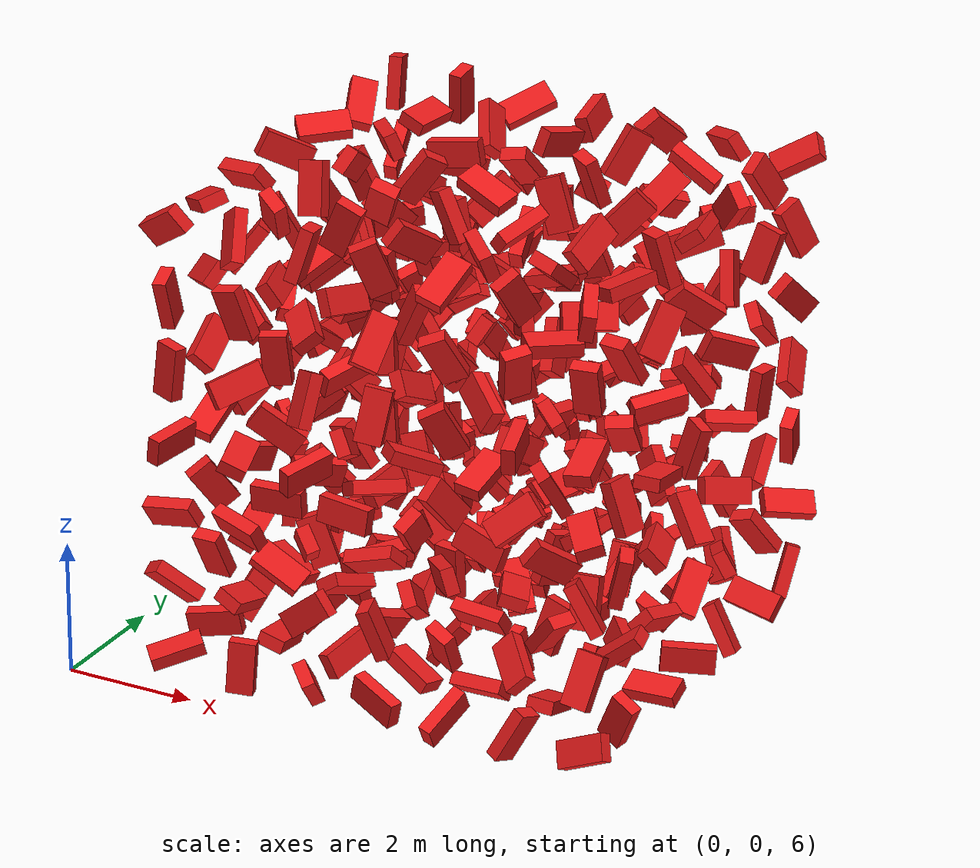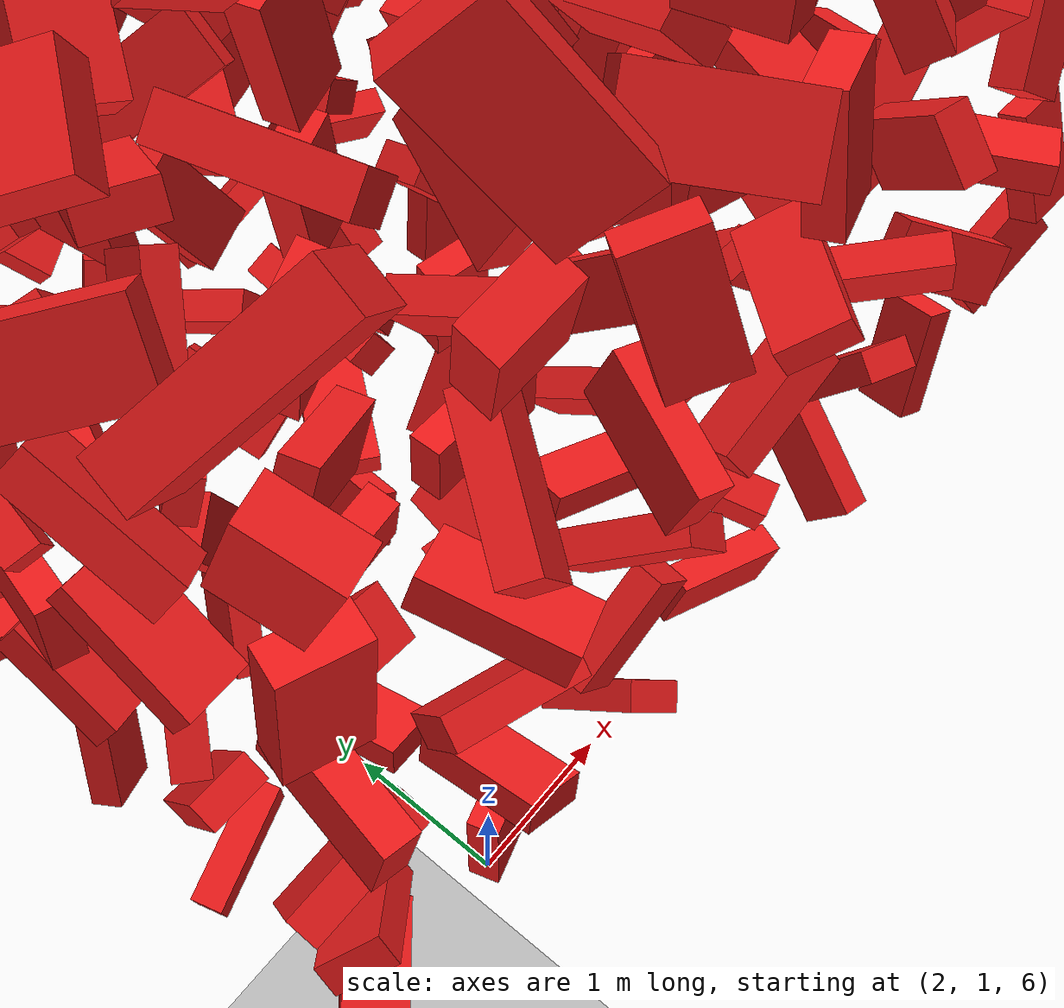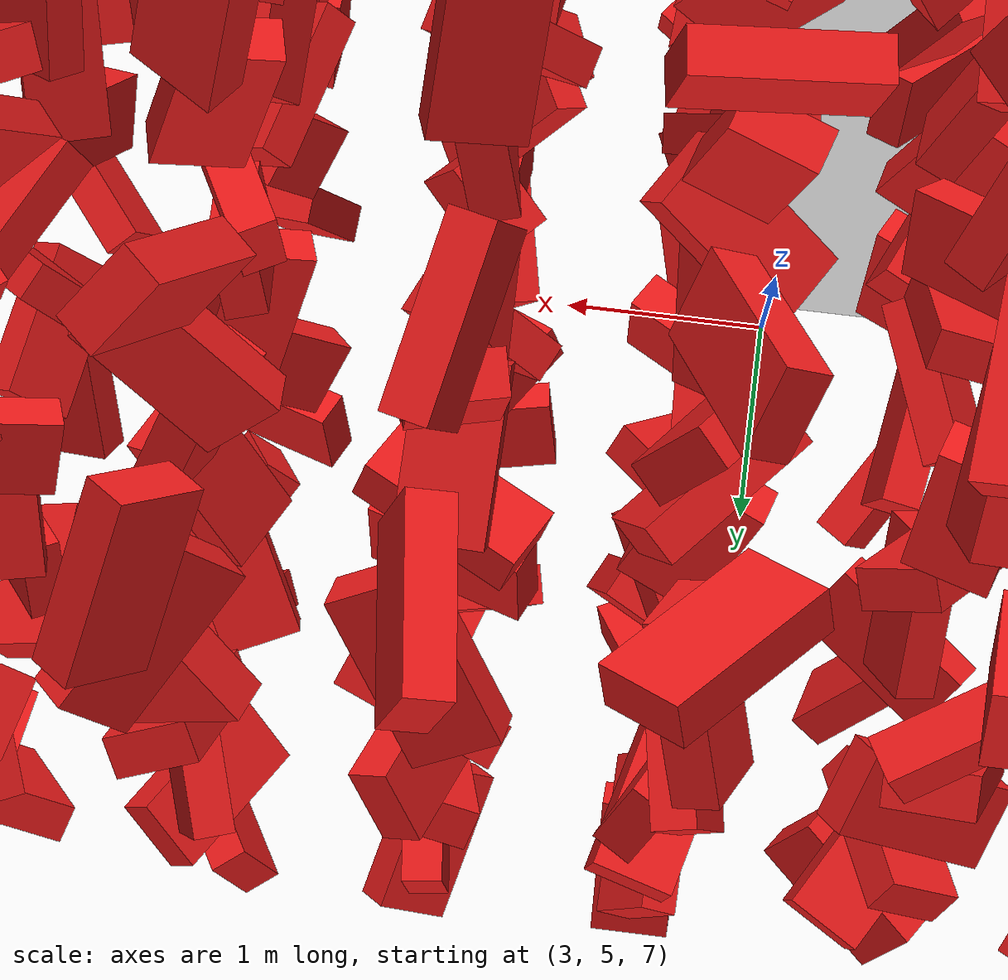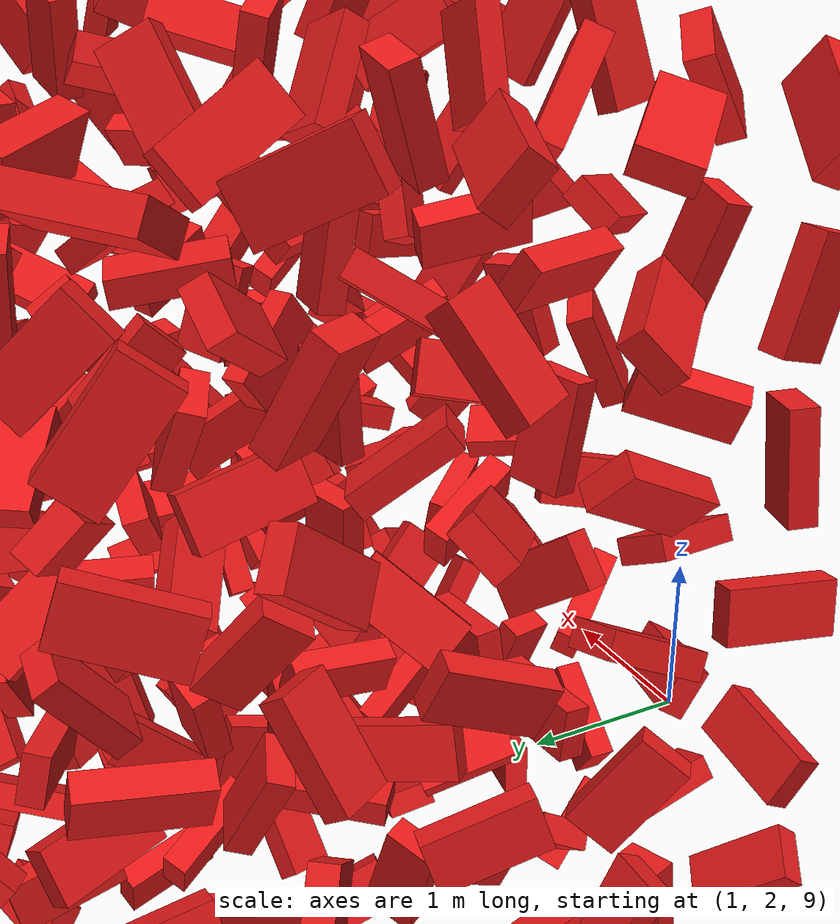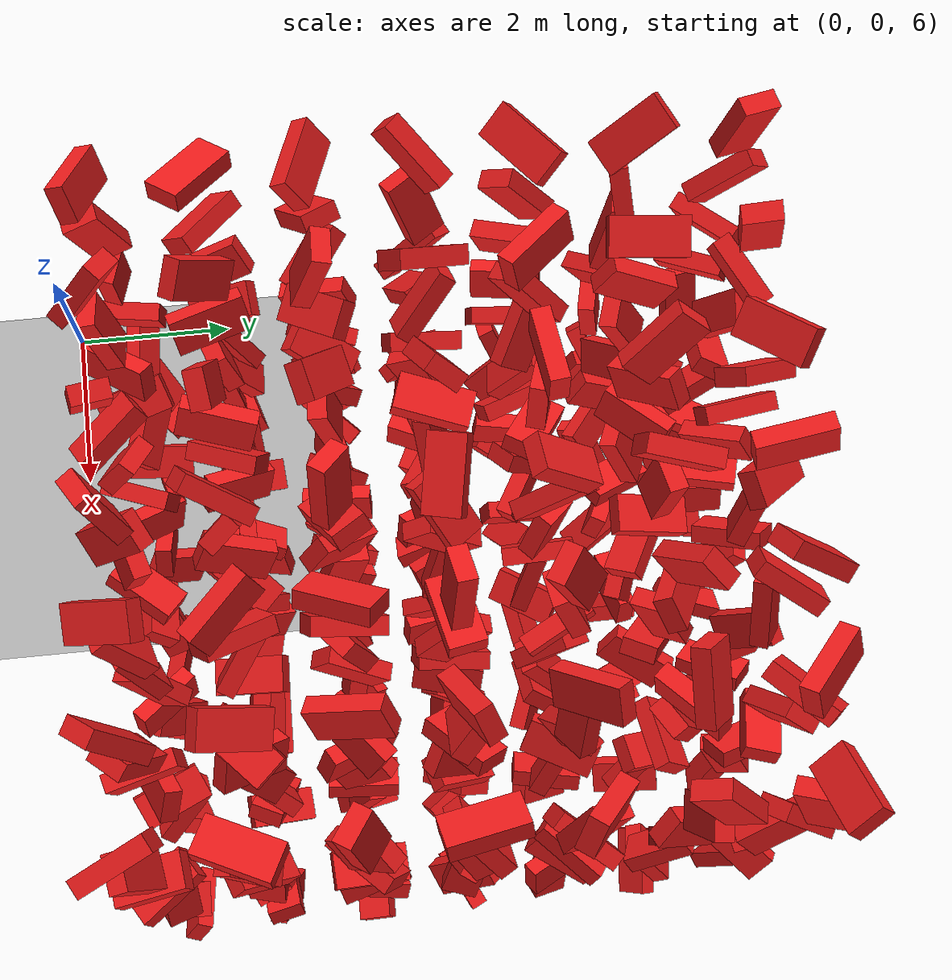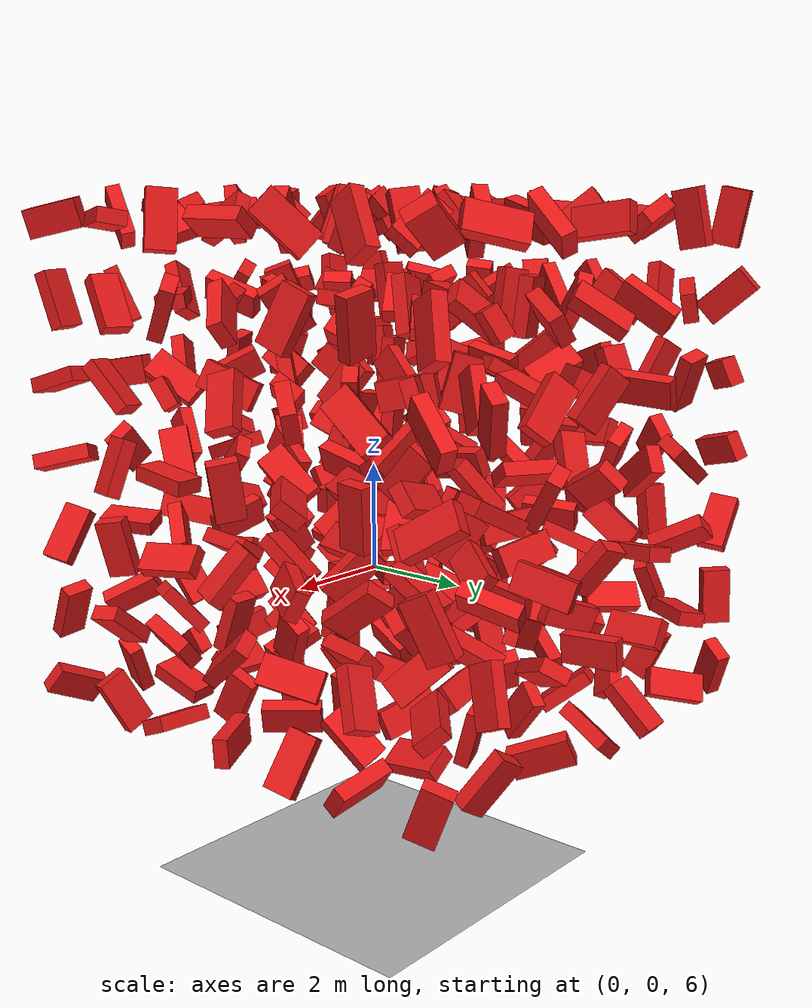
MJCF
<mujoco model="Humanoid and 100 objects">
    <compiler angle="degree"/>

    <option timestep="0.01" iterations="50" solver="PGS" jacobian="sparse" cone="elliptic" tolerance="1e-10"/>

    <size njmax="5000" nconmax="2000" nstack="1000000000"/>

    <default>
        <geom solimp=".9 .9 .01"/>

        <default class="object5">
			<geom type="box" material="geom" rgba=".9 .1 .1 1" size="0.400000 0.200000 0.100000"/>
        </default>
    </default>

    <asset>
        <texture type="skybox" builtin="gradient" width="128" height="128" rgb1=".4 .6 .8" rgb2="0 0 0"/>
        <texture name="texgeom" type="cube" builtin="flat" mark="cross" width="128" height="128"
            rgb1="0.6 0.6 0.6" rgb2="0.6 0.6 0.6" markrgb="1 1 1"/>
        <texture name="texplane" type="2d" builtin="checker" rgb1=".4 .4 .4" rgb2=".6 .6 .6"
            width="512" height="512"/>
        <material name='geom' texture="texgeom" texuniform="true"/>
        <material name='MatPlane' reflectance='0.3' texture="texplane" texrepeat="1 1" texuniform="true"/>
    </asset>

    <visual>
        <quality shadowsize="4096" offsamples="8"/>
        <map znear="0.1" force="0.05"/>
    </visual>

    <statistic extent="4"/>

    <worldbody>
        <light directional="true" diffuse=".8 .8 .8" pos="0 0 10" dir="0 0 -10"/>

        <geom pos="0 0 0" type="plane" size="3 3 .5" rgba=".7 .7 .7 1" material="MatPlane"/>
		<body pos="1.100143 1.100812 6.100941" quat="-0.928534 -0.108128 0.104586 -0.339404"> <freejoint/> <geom class="object5"/> </body>
		<body pos="1.100871 1.100146 7.200944" quat="0.217279 0.378159 -0.820158 0.370305"> <freejoint/> <geom class="object5"/> </body>
		<body pos="1.100969 1.100847 8.300532" quat="0.060974 -0.061366 0.508905 0.856465"> <freejoint/> <geom class="object5"/> </body>
		<body pos="1.100899 1.100351 9.400853" quat="0.431545 -0.476933 0.600580 -0.474982"> <freejoint/> <geom class="object5"/> </body>
		<body pos="1.100754 1.100403 10.500342" quat="-0.609891 -0.427465 0.538547 -0.394049"> <freejoint/> <geom class="object5"/> </body>
		<body pos="1.100168 1.100981 11.600679" quat="-0.701670 -0.039336 -0.687920 -0.181324"> <freejoint/> <geom class="object5"/> </body>
		<body pos="1.100625 1.100899 12.700781" quat="0.126007 0.292692 0.773537 -0.547809"> <freejoint/> <geom class="object5"/> </body>
		<body pos="1.100324 2.200118 6.100094" quat="0.148892 -0.054048 0.743789 -0.649375"> <freejoint/> <geom class="object5"/> </body>
		<body pos="1.100077 2.200330 7.200208" quat="-0.369398 -0.589394 0.618749 -0.365117"> <freejoint/> <geom class="object5"/> </body>
		<body pos="1.100399 2.200062 8.300447" quat="0.453628 -0.670894 0.022151 0.586202"> <freejoint/> <geom class="object5"/> </body>
		<body pos="1.100260 2.200176 9.400301" quat="-0.671848 -0.256605 0.069954 -0.691289"> <freejoint/> <geom class="object5"/> </body>
		<body pos="1.100639 2.200514 10.500010" quat="0.505306 0.449603 0.177341 0.714894"> <freejoint/> <geom class="object5"/> </body>
		<body pos="1.100038 2.200320 11.600415" quat="0.859487 0.341247 -0.250368 -0.286616"> <freejoint/> <geom class="object5"/> </body>
		<body pos="1.100673 2.200075 12.700620" quat="0.195610 0.347828 0.912933 0.085474"> <freejoint/> <geom class="object5"/> </body>
		<body pos="1.100326 3.300643 6.100701" quat="-0.155397 0.535804 -0.553213 -0.618645"> <freejoint/> <geom class="object5"/> </body>
		<body pos="1.100260 3.300324 7.200736" quat="0.604783 0.370000 0.039091 0.704138"> <freejoint/> <geom class="object5"/> </body>
		<body pos="1.100248 3.300565 8.300598" quat="0.540276 0.301260 -0.585066 -0.524444"> <freejoint/> <geom class="object5"/> </body>
		<body pos="1.100158 3.300597 9.400577" quat="0.564793 -0.504649 -0.584117 0.291797"> <freejoint/> <geom class="object5"/> </body>
		<body pos="1.100312 3.300719 10.500138" quat="-0.003530 -0.348487 -0.852557 -0.389476"> <freejoint/> <geom class="object5"/> </body>
		<body pos="1.100046 3.300318 11.600235" quat="-0.227389 -0.436059 -0.045762 0.869513"> <freejoint/> <geom class="object5"/> </body>
		<body pos="1.100337 3.300404 12.700383" quat="-0.873898 0.448515 -0.009525 0.187205"> <freejoint/> <geom class="object5"/> </body>
		<body pos="1.100188 4.400924 6.100762" quat="0.969688 -0.090352 0.213673 -0.076719"> <freejoint/> <geom class="object5"/> </body>
		<body pos="1.100739 4.400282 7.200134" quat="0.666790 -0.460705 0.573368 -0.119968"> <freejoint/> <geom class="object5"/> </body>
		<body pos="1.100412 4.400888 8.300310" quat="0.561245 0.722905 0.022077 -0.402399"> <freejoint/> <geom class="object5"/> </body>
		<body pos="1.100812 4.400869 9.400286" quat="-0.845993 -0.115975 0.465023 -0.233663"> <freejoint/> <geom class="object5"/> </body>
		<body pos="1.100791 4.400641 10.500027" quat="-0.596489 0.099686 0.611871 -0.509782"> <freejoint/> <geom class="object5"/> </body>
		<body pos="1.100618 4.400365 11.600817" quat="0.114862 0.816112 0.256895 -0.504750"> <freejoint/> <geom class="object5"/> </body>
		<body pos="1.100085 4.400126 12.700987" quat="0.705635 0.569384 0.408394 0.105336"> <freejoint/> <geom class="object5"/> </body>
		<body pos="1.100055 5.500801 6.100475" quat="-0.098412 0.704807 -0.402731 -0.575648"> <freejoint/> <geom class="object5"/> </body>
		<body pos="1.100027 5.500235 7.200805" quat="-0.660256 0.573012 -0.188446 -0.447446"> <freejoint/> <geom class="object5"/> </body>
		<body pos="1.100306 5.500102 8.300215" quat="-0.550597 0.455581 0.357169 -0.601431"> <freejoint/> <geom class="object5"/> </body>
		<body pos="1.100078 5.500506 9.400549" quat="0.308031 0.559875 -0.634455 -0.434884"> <freejoint/> <geom class="object5"/> </body>
		<body pos="1.100917 5.500084 10.500354" quat="-0.490262 -0.666291 -0.310970 -0.467972"> <freejoint/> <geom class="object5"/> </body>
		<body pos="1.100090 5.500124 11.600470" quat="0.096959 -0.655873 0.347052 -0.663314"> <freejoint/> <geom class="object5"/> </body>
		<body pos="1.100832 5.500861 12.700261" quat="-0.906843 -0.257738 -0.056551 -0.328647"> <freejoint/> <geom class="object5"/> </body>
		<body pos="1.100699 6.600300 6.100250" quat="0.712753 -0.210525 0.661735 -0.098840"> <freejoint/> <geom class="object5"/> </body>
		<body pos="1.100101 6.600577 7.200451" quat="0.335050 -0.410730 0.437293 0.726510"> <freejoint/> <geom class="object5"/> </body>
		<body pos="1.100034 6.600745 8.300692" quat="0.590447 -0.407255 0.513398 0.471104"> <freejoint/> <geom class="object5"/> </body>
		<body pos="1.100802 6.600095 9.400633" quat="0.766174 -0.409762 -0.480996 0.117110"> <freejoint/> <geom class="object5"/> </body>
		<body pos="1.100830 6.600740 10.500184" quat="0.479297 0.263987 -0.587495 0.596184"> <freejoint/> <geom class="object5"/> </body>
		<body pos="1.100553 6.600532 11.600325" quat="0.425514 -0.362186 -0.528831 -0.638825"> <freejoint/> <geom class="object5"/> </body>
		<body pos="1.100099 6.600181 12.700839" quat="-0.322323 0.500423 0.802931 0.031418"> <freejoint/> <geom class="object5"/> </body>
		<body pos="1.100429 7.700229 6.100377" quat="0.758674 -0.325155 -0.564242 0.017848"> <freejoint/> <geom class="object5"/> </body>
		<body pos="1.100734 7.700316 7.200063" quat="0.661231 0.286173 -0.638877 0.269655"> <freejoint/> <geom class="object5"/> </body>
		<body pos="1.100194 7.700900 8.300980" quat="0.071529 -0.429961 -0.090485 -0.895450"> <freejoint/> <geom class="object5"/> </body>
		<body pos="1.100386 7.700552 9.400892" quat="-0.386885 0.355464 -0.725369 0.444753"> <freejoint/> <geom class="object5"/> </body>
		<body pos="1.100727 7.700392 10.500573" quat="-0.263031 -0.287611 0.495639 0.776168"> <freejoint/> <geom class="object5"/> </body>
		<body pos="1.100664 7.700645 11.600586" quat="-0.407136 -0.627850 0.189419 0.635740"> <freejoint/> <geom class="object5"/> </body>
		<body pos="1.100208 7.700744 12.700470" quat="0.697328 -0.166261 0.696678 0.027029"> <freejoint/> <geom class="object5"/> </body>
		<body pos="2.200721 1.100259 6.100964" quat="0.567728 -0.450504 -0.565875 -0.393086"> <freejoint/> <geom class="object5"/> </body>
		<body pos="2.200543 1.100469 7.200284" quat="0.667090 -0.253237 0.066368 -0.697464"> <freejoint/> <geom class="object5"/> </body>
		<body pos="2.200444 1.100691 8.300066" quat="0.124474 -0.089388 -0.864470 0.478756"> <freejoint/> <geom class="object5"/> </body>
		<body pos="2.200555 1.100019 9.400341" quat="0.189955 -0.575303 -0.784808 0.130457"> <freejoint/> <geom class="object5"/> </body>
		<body pos="2.200621 1.100600 10.500335" quat="0.445081 -0.153718 0.537845 -0.699283"> <freejoint/> <geom class="object5"/> </body>
		<body pos="2.200818 1.100346 11.600307" quat="-0.393188 -0.482362 0.620005 -0.477834"> <freejoint/> <geom class="object5"/> </body>
		<body pos="2.200405 1.100653 12.700901" quat="0.607771 0.050908 -0.582202 0.537646"> <freejoint/> <geom class="object5"/> </body>
		<body pos="2.200322 2.200050 6.100240" quat="-0.731359 0.176067 -0.019071 0.658597"> <freejoint/> <geom class="object5"/> </body>
		<body pos="2.200209 2.200674 7.200961" quat="0.928321 0.252167 0.272392 -0.020859"> <freejoint/> <geom class="object5"/> </body>
		<body pos="2.200667 2.200385 8.300257" quat="0.026884 -0.032400 0.746204 -0.664385"> <freejoint/> <geom class="object5"/> </body>
		<body pos="2.200205 2.200186 9.400826" quat="-0.336972 0.098055 0.673795 0.650259"> <freejoint/> <geom class="object5"/> </body>
		<body pos="2.200411 2.200066 10.500847" quat="-0.357423 -0.600483 0.461773 -0.546291"> <freejoint/> <geom class="object5"/> </body>
		<body pos="2.200183 2.200064 11.600563" quat="0.713057 -0.368180 0.287857 -0.522620"> <freejoint/> <geom class="object5"/> </body>
		<body pos="2.200035 2.200644 12.700539" quat="0.593466 -0.096620 0.539525 0.589386"> <freejoint/> <geom class="object5"/> </body>
		<body pos="2.200199 3.300870 6.100698" quat="-0.456195 0.166358 -0.799111 0.354448"> <freejoint/> <geom class="object5"/> </body>
		<body pos="2.200523 3.300731 7.200531" quat="0.511405 -0.270024 -0.690372 -0.434671"> <freejoint/> <geom class="object5"/> </body>
		<body pos="2.200911 3.300895 8.300840" quat="-0.585184 -0.703909 -0.366865 -0.165775"> <freejoint/> <geom class="object5"/> </body>
		<body pos="2.200597 3.300377 9.400965" quat="-0.414880 0.184509 -0.828362 0.328097"> <freejoint/> <geom class="object5"/> </body>
		<body pos="2.200611 3.300340 10.500026" quat="0.495186 -0.287132 -0.143776 -0.807264"> <freejoint/> <geom class="object5"/> </body>
		<body pos="2.200915 3.300322 11.600018" quat="0.820148 0.290193 -0.128217 0.476136"> <freejoint/> <geom class="object5"/> </body>
		<body pos="2.200062 3.300217 12.700755" quat="-0.465614 0.595735 -0.548083 -0.357644"> <freejoint/> <geom class="object5"/> </body>
		<body pos="2.200992 4.400400 6.100939" quat="0.656090 -0.282032 0.538160 0.447647"> <freejoint/> <geom class="object5"/> </body>
		<body pos="2.200666 4.400655 7.200246" quat="-0.547265 0.638625 0.421258 -0.339414"> <freejoint/> <geom class="object5"/> </body>
		<body pos="2.200501 4.400052 8.300414" quat="-0.382209 -0.389738 0.729829 -0.411546"> <freejoint/> <geom class="object5"/> </body>
		<body pos="2.200750 4.400630 9.400336" quat="-0.528731 -0.116906 0.789523 0.288843"> <freejoint/> <geom class="object5"/> </body>
		<body pos="2.200743 4.400146 10.500366" quat="-0.633765 -0.335310 0.454358 0.528647"> <freejoint/> <geom class="object5"/> </body>
		<body pos="2.200329 4.400089 11.600611" quat="-0.450680 -0.057891 0.487087 -0.745843"> <freejoint/> <geom class="object5"/> </body>
		<body pos="2.200990 4.400429 12.700461" quat="0.417545 -0.472496 -0.258046 0.731994"> <freejoint/> <geom class="object5"/> </body>
		<body pos="2.200703 5.500746 6.100574" quat="0.185044 -0.459959 0.612727 -0.615437"> <freejoint/> <geom class="object5"/> </body>
		<body pos="2.200295 5.500898 7.200777" quat="-0.460393 0.602643 0.484843 -0.435646"> <freejoint/> <geom class="object5"/> </body>
		<body pos="2.200465 5.500293 8.300681" quat="-0.469907 0.320957 0.400783 -0.718017"> <freejoint/> <geom class="object5"/> </body>
		<body pos="2.200575 5.500222 9.400089" quat="-0.391810 0.628523 -0.630339 -0.232629"> <freejoint/> <geom class="object5"/> </body>
		<body pos="2.200700 5.500255 10.500313" quat="-0.880472 0.331686 -0.315726 0.122763"> <freejoint/> <geom class="object5"/> </body>
		<body pos="2.200919 5.500038 11.600429" quat="-0.667541 -0.468771 -0.574943 -0.063899"> <freejoint/> <geom class="object5"/> </body>
		<body pos="2.200346 5.500765 12.700799" quat="0.203435 -0.364813 -0.743935 0.521619"> <freejoint/> <geom class="object5"/> </body>
		<body pos="2.200675 6.600021 6.100335" quat="0.459905 0.027647 -0.831129 -0.311363"> <freejoint/> <geom class="object5"/> </body>
		<body pos="2.200459 6.600555 7.200508" quat="0.306001 0.112758 0.389518 0.861350"> <freejoint/> <geom class="object5"/> </body>
		<body pos="2.200916 6.600383 8.300290" quat="-0.436624 0.541732 -0.218059 0.684351"> <freejoint/> <geom class="object5"/> </body>
		<body pos="2.200852 6.600233 9.400290" quat="-0.502002 0.702853 0.482509 0.145523"> <freejoint/> <geom class="object5"/> </body>
		<body pos="2.200411 6.600174 10.500073" quat="0.662374 -0.303109 0.458237 0.509318"> <freejoint/> <geom class="object5"/> </body>
		<body pos="2.200533 6.600653 11.600962" quat="-0.303302 0.675241 0.382363 -0.553043"> <freejoint/> <geom class="object5"/> </body>
		<body pos="2.200010 6.600117 12.700529" quat="-0.136032 -0.662836 0.722880 0.139959"> <freejoint/> <geom class="object5"/> </body>
		<body pos="2.200991 7.700488 6.100393" quat="0.486407 0.793979 -0.354364 -0.086204"> <freejoint/> <geom class="object5"/> </body>
		<body pos="2.200881 7.700796 7.200008" quat="-0.862377 0.083253 0.048851 -0.496979"> <freejoint/> <geom class="object5"/> </body>
		<body pos="2.200375 7.700661 8.300124" quat="-0.013294 -0.585729 -0.706199 -0.397528"> <freejoint/> <geom class="object5"/> </body>
		<body pos="2.200642 7.700569 9.400561" quat="-0.921864 0.248157 0.283821 0.089616"> <freejoint/> <geom class="object5"/> </body>
		<body pos="2.200846 7.700799 10.500877" quat="0.334556 -0.526790 0.653985 0.427630"> <freejoint/> <geom class="object5"/> </body>
		<body pos="2.200335 7.700891 11.600842" quat="-0.716104 0.638936 0.088789 -0.266595"> <freejoint/> <geom class="object5"/> </body>
		<body pos="2.200108 7.700185 12.700047" quat="-0.067974 0.674116 0.049598 -0.733817"> <freejoint/> <geom class="object5"/> </body>
		<body pos="3.300626 1.100652 6.100596" quat="0.009944 -0.639653 -0.526507 0.559943"> <freejoint/> <geom class="object5"/> </body>
		<body pos="3.300495 1.100603 7.200505" quat="-0.258766 0.207075 -0.686382 -0.647333"> <freejoint/> <geom class="object5"/> </body>
		<body pos="3.300894 1.100387 8.300132" quat="0.586138 0.618286 -0.521079 -0.051392"> <freejoint/> <geom class="object5"/> </body>
		<body pos="3.300127 1.100012 9.400409" quat="-0.395739 0.395923 -0.677788 0.476696"> <freejoint/> <geom class="object5"/> </body>
		<body pos="3.300821 1.100704 10.500765" quat="0.445839 0.535594 0.173717 -0.695837"> <freejoint/> <geom class="object5"/> </body>
		<body pos="3.300513 1.100531 11.600541" quat="-0.351686 0.829465 -0.431326 0.047565"> <freejoint/> <geom class="object5"/> </body>
		<body pos="3.300308 1.100999 12.700545" quat="0.006040 -0.792283 -0.115426 -0.599106"> <freejoint/> <geom class="object5"/> </body>
		<body pos="3.300045 2.200186 6.100396" quat="-0.553114 0.276907 -0.512609 0.595499"> <freejoint/> <geom class="object5"/> </body>
		<body pos="3.300768 2.200468 7.200420" quat="0.720969 -0.342228 -0.052637 0.600260"> <freejoint/> <geom class="object5"/> </body>
		<body pos="3.300182 2.200379 8.300069" quat="0.676225 -0.734632 0.038101 0.039801"> <freejoint/> <geom class="object5"/> </body>
		<body pos="3.300537 2.200499 9.400552" quat="-0.569686 -0.162767 -0.543865 -0.594285"> <freejoint/> <geom class="object5"/> </body>
		<body pos="3.300665 2.200604 10.500034" quat="0.730233 -0.388434 -0.355336 0.435449"> <freejoint/> <geom class="object5"/> </body>
		<body pos="3.300036 2.200088 11.600789" quat="-0.702299 -0.372833 -0.378859 -0.473538"> <freejoint/> <geom class="object5"/> </body>
		<body pos="3.300324 2.200024 12.700213" quat="0.651461 -0.540243 -0.364924 -0.388030"> <freejoint/> <geom class="object5"/> </body>
		<body pos="3.300652 3.300943 6.100878" quat="-0.500399 -0.575770 -0.615217 -0.198995"> <freejoint/> <geom class="object5"/> </body>
		<body pos="3.300749 3.300955 7.200402" quat="0.441378 0.031692 0.022526 -0.896478"> <freejoint/> <geom class="object5"/> </body>
		<body pos="3.300602 3.300011 8.300894" quat="-0.596163 -0.419253 -0.355652 -0.585088"> <freejoint/> <geom class="object5"/> </body>
		<body pos="3.300153 3.300384 9.400180" quat="-0.595746 -0.430223 -0.541093 0.408917"> <freejoint/> <geom class="object5"/> </body>
		<body pos="3.300182 3.300848 10.500235" quat="-0.430979 0.596561 -0.445599 -0.509719"> <freejoint/> <geom class="object5"/> </body>
		<body pos="3.300774 3.300301 11.600781" quat="0.557173 -0.441370 0.474039 0.519651"> <freejoint/> <geom class="object5"/> </body>
		<body pos="3.300734 3.300415 12.700471" quat="0.256523 0.465120 0.741629 -0.409689"> <freejoint/> <geom class="object5"/> </body>
		<body pos="3.300365 4.400774 6.100637" quat="-0.703478 -0.323377 0.076338 0.628266"> <freejoint/> <geom class="object5"/> </body>
		<body pos="3.300706 4.400986 7.200393" quat="0.155435 -0.522051 -0.645718 0.535118"> <freejoint/> <geom class="object5"/> </body>
		<body pos="3.300517 4.400026 8.300906" quat="-0.434278 -0.359544 0.473710 -0.676557"> <freejoint/> <geom class="object5"/> </body>
		<body pos="3.300195 4.400430 9.400026" quat="0.266735 -0.897052 0.132444 -0.326509"> <freejoint/> <geom class="object5"/> </body>
		<body pos="3.300983 4.400689 10.500226" quat="-0.399066 -0.315587 0.736304 -0.446104"> <freejoint/> <geom class="object5"/> </body>
		<body pos="3.300596 4.400517 11.600538" quat="-0.581638 0.036160 0.069070 0.809703"> <freejoint/> <geom class="object5"/> </body>
		<body pos="3.300988 4.400735 12.700708" quat="0.808406 -0.354578 -0.463478 -0.077091"> <freejoint/> <geom class="object5"/> </body>
		<body pos="3.300447 5.500619 6.100864" quat="0.331869 0.333668 0.261961 -0.842559"> <freejoint/> <geom class="object5"/> </body>
		<body pos="3.300495 5.500400 7.200265" quat="0.576916 0.428932 -0.524649 -0.455992"> <freejoint/> <geom class="object5"/> </body>
		<body pos="3.300003 5.500947 8.300133" quat="0.161785 0.217493 0.596540 0.755422"> <freejoint/> <geom class="object5"/> </body>
		<body pos="3.300537 5.500600 9.400134" quat="-0.728659 -0.061124 0.463859 0.500155"> <freejoint/> <geom class="object5"/> </body>
		<body pos="3.300347 5.500058 10.500417" quat="-0.054765 -0.927589 0.267921 -0.254553"> <freejoint/> <geom class="object5"/> </body>
		<body pos="3.300331 5.500625 11.600332" quat="0.520473 0.376828 -0.618585 0.452173"> <freejoint/> <geom class="object5"/> </body>
		<body pos="3.300578 5.500093 12.700725" quat="-0.095613 -0.010502 -0.706716 0.700929"> <freejoint/> <geom class="object5"/> </body>
		<body pos="3.300796 6.600324 6.100297" quat="0.488762 0.261746 -0.194139 0.809266"> <freejoint/> <geom class="object5"/> </body>
		<body pos="3.300983 6.600676 7.200474" quat="-0.613134 0.742538 -0.055514 0.263861"> <freejoint/> <geom class="object5"/> </body>
		<body pos="3.300040 6.600634 8.300710" quat="-0.016690 0.844887 -0.485014 0.225054"> <freejoint/> <geom class="object5"/> </body>
		<body pos="3.300501 6.600776 9.400656" quat="0.390508 0.441221 -0.731092 0.343993"> <freejoint/> <geom class="object5"/> </body>
		<body pos="3.300628 6.600832 10.500164" quat="0.768032 0.490457 0.207295 0.355821"> <freejoint/> <geom class="object5"/> </body>
		<body pos="3.300243 6.600695 11.600607" quat="-0.611127 0.597665 0.518351 -0.025134"> <freejoint/> <geom class="object5"/> </body>
		<body pos="3.300610 6.600302 12.700763" quat="-0.305063 -0.466925 -0.213498 -0.802082"> <freejoint/> <geom class="object5"/> </body>
		<body pos="3.300592 7.700271 6.100143" quat="0.234848 0.656079 0.663613 -0.272075"> <freejoint/> <geom class="object5"/> </body>
		<body pos="3.300931 7.700420 7.200589" quat="-0.359959 0.618332 0.615758 -0.330057"> <freejoint/> <geom class="object5"/> </body>
		<body pos="3.300762 7.700040 8.300577" quat="0.607633 0.091313 -0.030991 -0.788342"> <freejoint/> <geom class="object5"/> </body>
		<body pos="3.300380 7.700215 9.400573" quat="0.660397 -0.501320 -0.541824 0.137769"> <freejoint/> <geom class="object5"/> </body>
		<body pos="3.300466 7.700907 10.500688" quat="-0.637825 -0.416381 0.392871 0.515227"> <freejoint/> <geom class="object5"/> </body>
		<body pos="3.300286 7.700799 11.600876" quat="-0.756414 -0.242481 0.484052 0.367061"> <freejoint/> <geom class="object5"/> </body>
		<body pos="3.300134 7.700715 12.700901" quat="0.347459 -0.835061 -0.424693 -0.039760"> <freejoint/> <geom class="object5"/> </body>
		<body pos="4.400789 1.100959 6.100477" quat="0.016552 0.207844 0.658002 0.723575"> <freejoint/> <geom class="object5"/> </body>
		<body pos="4.400224 1.100158 7.200586" quat="0.044404 0.810758 0.135143 -0.567834"> <freejoint/> <geom class="object5"/> </body>
		<body pos="4.400524 1.100255 8.300141" quat="-0.915347 0.372651 0.141252 0.057606"> <freejoint/> <geom class="object5"/> </body>
		<body pos="4.400194 1.100453 9.400209" quat="-0.042886 0.424278 -0.871352 0.242684"> <freejoint/> <geom class="object5"/> </body>
		<body pos="4.400789 1.100968 10.500013" quat="0.513413 0.536623 -0.317090 0.589828"> <freejoint/> <geom class="object5"/> </body>
		<body pos="4.400519 1.100241 11.600223" quat="-0.067939 0.682088 -0.537248 -0.491432"> <freejoint/> <geom class="object5"/> </body>
		<body pos="4.400009 1.100663 12.700147" quat="-0.625557 -0.473901 -0.591679 0.184425"> <freejoint/> <geom class="object5"/> </body>
		<body pos="4.400142 2.200308 6.100496" quat="-0.967783 0.084864 -0.214202 0.101548"> <freejoint/> <geom class="object5"/> </body>
		<body pos="4.400651 2.200071 7.200811" quat="-0.562789 -0.518343 0.633428 0.115576"> <freejoint/> <geom class="object5"/> </body>
		<body pos="4.400326 2.200994 8.300421" quat="-0.357233 0.538140 0.147348 -0.749052"> <freejoint/> <geom class="object5"/> </body>
		<body pos="4.400856 2.200009 9.400806" quat="-0.897237 0.086182 -0.189434 -0.389426"> <freejoint/> <geom class="object5"/> </body>
		<body pos="4.400520 2.200451 10.500908" quat="-0.708820 -0.226523 -0.455674 -0.488490"> <freejoint/> <geom class="object5"/> </body>
		<body pos="4.400206 2.200115 11.600348" quat="0.329396 -0.780572 -0.158915 -0.506904"> <freejoint/> <geom class="object5"/> </body>
		<body pos="4.400899 2.200866 12.700076" quat="-0.120883 0.563065 -0.564474 0.591367"> <freejoint/> <geom class="object5"/> </body>
		<body pos="4.400879 3.300300 6.100006" quat="0.893780 0.148040 -0.404566 0.124770"> <freejoint/> <geom class="object5"/> </body>
		<body pos="4.400535 3.300265 7.200518" quat="0.440006 0.566729 0.442861 -0.537668"> <freejoint/> <geom class="object5"/> </body>
		<body pos="4.400233 3.300983 8.300444" quat="-0.453158 0.163110 0.852310 -0.203987"> <freejoint/> <geom class="object5"/> </body>
		<body pos="4.400456 3.300009 9.400982" quat="0.618763 -0.073101 -0.771907 0.126286"> <freejoint/> <geom class="object5"/> </body>
		<body pos="4.400435 3.300705 10.500651" quat="-0.537471 -0.134602 -0.699952 -0.450638"> <freejoint/> <geom class="object5"/> </body>
		<body pos="4.400766 3.300140 11.600447" quat="-0.262428 -0.343624 -0.097142 0.896447"> <freejoint/> <geom class="object5"/> </body>
		<body pos="4.400709 3.300995 12.700134" quat="-0.755881 0.376929 -0.485050 -0.226485"> <freejoint/> <geom class="object5"/> </body>
		<body pos="4.400282 4.400410 6.100817" quat="-0.481927 -0.606604 0.557019 0.299178"> <freejoint/> <geom class="object5"/> </body>
		<body pos="4.400244 4.400642 7.200062" quat="0.288064 0.670895 0.286501 0.620351"> <freejoint/> <geom class="object5"/> </body>
		<body pos="4.400785 4.400249 8.300007" quat="0.076785 0.880487 0.215114 -0.415419"> <freejoint/> <geom class="object5"/> </body>
		<body pos="4.400607 4.400934 9.400558" quat="-0.395294 -0.161525 0.604277 -0.672682"> <freejoint/> <geom class="object5"/> </body>
		<body pos="4.400177 4.400157 10.500728" quat="0.247549 -0.635630 0.277735 -0.676430"> <freejoint/> <geom class="object5"/> </body>
		<body pos="4.400811 4.400578 11.600883" quat="-0.902700 0.116271 -0.295753 -0.290075"> <freejoint/> <geom class="object5"/> </body>
		<body pos="4.400216 4.400494 12.700716" quat="-0.150339 0.967837 -0.110891 -0.168503"> <freejoint/> <geom class="object5"/> </body>
		<body pos="4.400497 5.500473 6.100649" quat="-0.099583 0.000777 0.444263 0.890344"> <freejoint/> <geom class="object5"/> </body>
		<body pos="4.400475 5.500791 7.200522" quat="0.840857 0.262075 0.060586 0.469687"> <freejoint/> <geom class="object5"/> </body>
		<body pos="4.400403 5.500028 8.300859" quat="0.571717 0.661308 0.157514 -0.459348"> <freejoint/> <geom class="object5"/> </body>
		<body pos="4.400262 5.500105 9.400093" quat="0.441643 -0.556699 0.595247 -0.375125"> <freejoint/> <geom class="object5"/> </body>
		<body pos="4.400828 5.500871 10.500649" quat="0.613866 0.173952 -0.683925 0.353774"> <freejoint/> <geom class="object5"/> </body>
		<body pos="4.400795 5.500260 11.600413" quat="0.635965 -0.205435 -0.630770 0.394302"> <freejoint/> <geom class="object5"/> </body>
		<body pos="4.400186 5.500912 12.700521" quat="0.342182 0.639689 0.660625 -0.193094"> <freejoint/> <geom class="object5"/> </body>
		<body pos="4.400604 6.600602 6.100299" quat="-0.366327 -0.664531 -0.106289 -0.642578"> <freejoint/> <geom class="object5"/> </body>
		<body pos="4.400829 6.600070 7.200382" quat="-0.214623 -0.050522 -0.649250 0.727914"> <freejoint/> <geom class="object5"/> </body>
		<body pos="4.400935 6.600871 8.300478" quat="0.817333 -0.541332 0.183279 -0.073052"> <freejoint/> <geom class="object5"/> </body>
		<body pos="4.400196 6.600305 9.400318" quat="0.223663 -0.073647 -0.274290 0.932371"> <freejoint/> <geom class="object5"/> </body>
		<body pos="4.400912 6.600967 10.500575" quat="-0.102607 -0.710517 -0.682141 0.139001"> <freejoint/> <geom class="object5"/> </body>
		<body pos="4.400132 6.600937 11.600310" quat="0.420352 -0.592130 0.456524 0.514074"> <freejoint/> <geom class="object5"/> </body>
		<body pos="4.400189 6.600515 12.700270" quat="-0.546307 -0.309447 0.550413 0.550307"> <freejoint/> <geom class="object5"/> </body>
		<body pos="4.400139 7.700294 6.100870" quat="0.076335 -0.615120 0.696498 -0.361512"> <freejoint/> <geom class="object5"/> </body>
		<body pos="4.400885 7.700543 7.200473" quat="-0.538465 -0.511788 0.443771 0.501194"> <freejoint/> <geom class="object5"/> </body>
		<body pos="4.400486 7.700484 8.300057" quat="-0.623661 -0.435864 -0.204266 0.615910"> <freejoint/> <geom class="object5"/> </body>
		<body pos="4.400578 7.700056 9.400253" quat="0.412971 -0.407604 0.780412 -0.232961"> <freejoint/> <geom class="object5"/> </body>
		<body pos="4.400919 7.700960 10.500952" quat="0.191658 -0.475196 -0.584021 -0.629584"> <freejoint/> <geom class="object5"/> </body>
		<body pos="4.400745 7.700411 11.600223" quat="0.479570 -0.127947 0.359034 0.790403"> <freejoint/> <geom class="object5"/> </body>
		<body pos="4.400897 7.700886 12.700324" quat="-0.413400 -0.620261 0.494527 0.447013"> <freejoint/> <geom class="object5"/> </body>
		<body pos="5.500113 1.100964 6.100802" quat="-0.718982 0.344433 0.512422 -0.319146"> <freejoint/> <geom class="object5"/> </body>
		<body pos="5.500626 1.100116 7.200082" quat="-0.484729 -0.578258 0.632139 -0.176226"> <freejoint/> <geom class="object5"/> </body>
		<body pos="5.500681 1.100656 8.300281" quat="0.597027 0.681352 -0.384315 -0.177821"> <freejoint/> <geom class="object5"/> </body>
		<body pos="5.500814 1.100050 9.400097" quat="-0.330598 0.723422 0.136468 -0.590544"> <freejoint/> <geom class="object5"/> </body>
		<body pos="5.500080 1.100547 10.500833" quat="-0.530719 0.598100 -0.160809 -0.578579"> <freejoint/> <geom class="object5"/> </body>
		<body pos="5.500303 1.100930 11.600101" quat="0.604535 -0.181653 -0.521157 -0.574399"> <freejoint/> <geom class="object5"/> </body>
		<body pos="5.500992 1.100315 12.700252" quat="-0.090963 0.642733 -0.697386 -0.303766"> <freejoint/> <geom class="object5"/> </body>
		<body pos="5.500919 2.200277 6.100624" quat="-0.016013 0.012510 -0.332232 -0.942979"> <freejoint/> <geom class="object5"/> </body>
		<body pos="5.500616 2.200983 7.200603" quat="0.034656 -0.018763 -0.901635 0.430698"> <freejoint/> <geom class="object5"/> </body>
		<body pos="5.500738 2.200252 8.300655" quat="0.146833 0.060213 -0.637366 0.754042"> <freejoint/> <geom class="object5"/> </body>
		<body pos="5.500078 2.200089 9.400016" quat="0.671737 0.071130 0.156679 -0.720528"> <freejoint/> <geom class="object5"/> </body>
		<body pos="5.500549 2.200506 10.500803" quat="0.013365 0.377456 0.701010 0.604924"> <freejoint/> <geom class="object5"/> </body>
		<body pos="5.500325 2.200550 11.600851" quat="0.389979 0.406074 0.769321 0.301936"> <freejoint/> <geom class="object5"/> </body>
		<body pos="5.500488 2.200343 12.700868" quat="-0.283732 -0.268330 -0.495712 -0.775735"> <freejoint/> <geom class="object5"/> </body>
		<body pos="5.500938 3.300300 6.100922" quat="-0.710799 -0.124830 -0.689464 -0.061819"> <freejoint/> <geom class="object5"/> </body>
		<body pos="5.500271 3.300354 7.200364" quat="0.294735 -0.413472 -0.825672 -0.245841"> <freejoint/> <geom class="object5"/> </body>
		<body pos="5.500262 3.300421 8.300200" quat="0.538827 -0.701479 -0.301692 -0.355774"> <freejoint/> <geom class="object5"/> </body>
		<body pos="5.500879 3.300548 9.400057" quat="0.554332 0.281841 -0.678560 -0.390945"> <freejoint/> <geom class="object5"/> </body>
		<body pos="5.500531 3.300732 10.500826" quat="-0.389436 0.608203 -0.190766 -0.664859"> <freejoint/> <geom class="object5"/> </body>
		<body pos="5.500649 3.300818 11.600421" quat="0.513026 -0.493068 -0.317616 0.626744"> <freejoint/> <geom class="object5"/> </body>
		<body pos="5.500587 3.300752 12.700755" quat="-0.795596 0.239781 0.325146 -0.451456"> <freejoint/> <geom class="object5"/> </body>
		<body pos="5.500290 4.400206 6.100843" quat="-0.632063 -0.483059 0.410880 -0.445339"> <freejoint/> <geom class="object5"/> </body>
		<body pos="5.500047 4.400179 7.200437" quat="0.746942 -0.234726 -0.619899 -0.052023"> <freejoint/> <geom class="object5"/> </body>
		<body pos="5.500011 4.400054 8.300357" quat="0.733907 0.312003 0.229009 0.558202"> <freejoint/> <geom class="object5"/> </body>
		<body pos="5.500510 4.400576 9.400966" quat="-0.570555 0.445713 0.306824 -0.617791"> <freejoint/> <geom class="object5"/> </body>
		<body pos="5.500759 4.400334 10.500677" quat="-0.206106 -0.738452 0.235040 0.597466"> <freejoint/> <geom class="object5"/> </body>
		<body pos="5.500589 4.400565 11.600181" quat="0.024506 0.987900 0.100510 0.115549"> <freejoint/> <geom class="object5"/> </body>
		<body pos="5.500194 4.400270 12.700930" quat="-0.640998 -0.510866 -0.414836 0.395029"> <freejoint/> <geom class="object5"/> </body>
		<body pos="5.500244 5.500411 6.100265" quat="-0.056472 -0.219631 -0.552626 -0.801984"> <freejoint/> <geom class="object5"/> </body>
		<body pos="5.500941 5.500522 7.200280" quat="-0.310047 -0.878546 0.091901 -0.351541"> <freejoint/> <geom class="object5"/> </body>
		<body pos="5.500554 5.500271 8.300792" quat="-0.588629 0.227129 0.468513 0.618404"> <freejoint/> <geom class="object5"/> </body>
		<body pos="5.500797 5.500651 9.400535" quat="-0.342106 -0.646192 0.144642 0.666692"> <freejoint/> <geom class="object5"/> </body>
		<body pos="5.500371 5.500284 10.500223" quat="-0.635440 0.566287 -0.427433 0.304690"> <freejoint/> <geom class="object5"/> </body>
		<body pos="5.500731 5.500229 11.600688" quat="0.543509 -0.310960 -0.527624 -0.574033"> <freejoint/> <geom class="object5"/> </body>
		<body pos="5.500247 5.500731 12.700804" quat="0.420105 -0.512329 -0.231929 -0.712208"> <freejoint/> <geom class="object5"/> </body>
		<body pos="5.500035 6.600480 6.100024" quat="0.621013 0.293920 0.526183 -0.501084"> <freejoint/> <geom class="object5"/> </body>
		<body pos="5.500457 6.600449 7.200229" quat="-0.822621 0.178706 0.166575 0.513431"> <freejoint/> <geom class="object5"/> </body>
		<body pos="5.500773 6.600528 8.300358" quat="-0.321734 0.807263 0.349689 -0.350044"> <freejoint/> <geom class="object5"/> </body>
		<body pos="5.500859 6.600704 9.400919" quat="0.256603 -0.434463 0.020328 0.863124"> <freejoint/> <geom class="object5"/> </body>
		<body pos="5.500008 6.600587 10.500849" quat="-0.721377 -0.339887 -0.603257 0.013141"> <freejoint/> <geom class="object5"/> </body>
		<body pos="5.500808 6.600023 11.600965" quat="-0.333278 0.188743 -0.447538 -0.808091"> <freejoint/> <geom class="object5"/> </body>
		<body pos="5.500002 6.600182 12.700271" quat="-0.692614 0.438605 0.569217 0.062478"> <freejoint/> <geom class="object5"/> </body>
		<body pos="5.500901 7.700093 6.100093" quat="0.173614 0.489832 0.632462 0.574382"> <freejoint/> <geom class="object5"/> </body>
		<body pos="5.500295 7.700686 7.200125" quat="0.282581 -0.421440 0.847255 -0.157149"> <freejoint/> <geom class="object5"/> </body>
		<body pos="5.500583 7.700702 8.300288" quat="-0.566077 0.559668 -0.298016 0.526797"> <freejoint/> <geom class="object5"/> </body>
		<body pos="5.500543 7.700159 9.400396" quat="-0.587631 -0.491726 0.171632 -0.619224"> <freejoint/> <geom class="object5"/> </body>
		<body pos="5.500105 7.700202 10.500555" quat="0.194797 -0.346913 -0.471997 -0.786717"> <freejoint/> <geom class="object5"/> </body>
		<body pos="5.500971 7.700833 11.600767" quat="-0.486569 -0.719683 -0.486426 -0.093256"> <freejoint/> <geom class="object5"/> </body>
		<body pos="5.500132 7.700795 12.700725" quat="-0.538346 -0.559515 -0.628204 -0.049875"> <freejoint/> <geom class="object5"/> </body>
		<body pos="6.600126 1.100750 6.100644" quat="0.530523 -0.008376 0.827392 -0.184111"> <freejoint/> <geom class="object5"/> </body>
		<body pos="6.600499 1.100370 7.200254" quat="-0.472273 0.766640 -0.434500 -0.020754"> <freejoint/> <geom class="object5"/> </body>
		<body pos="6.600966 1.100008 8.300257" quat="0.832992 -0.137785 0.059413 -0.532549"> <freejoint/> <geom class="object5"/> </body>
		<body pos="6.600535 1.100431 9.400665" quat="0.341649 0.168407 0.503206 -0.775693"> <freejoint/> <geom class="object5"/> </body>
		<body pos="6.600048 1.100993 10.500872" quat="0.381573 0.482557 0.524159 0.588895"> <freejoint/> <geom class="object5"/> </body>
		<body pos="6.600684 1.100404 11.600961" quat="0.534969 0.325929 0.768685 -0.129240"> <freejoint/> <geom class="object5"/> </body>
		<body pos="6.600493 1.100452 12.700011" quat="0.632310 0.404462 0.660310 0.024180"> <freejoint/> <geom class="object5"/> </body>
		<body pos="6.600857 2.200643 6.100159" quat="0.094981 0.666833 0.726321 -0.137003"> <freejoint/> <geom class="object5"/> </body>
		<body pos="6.600950 2.200596 7.200343" quat="0.889573 -0.090422 -0.400387 -0.200434"> <freejoint/> <geom class="object5"/> </body>
		<body pos="6.600984 2.200122 8.300398" quat="0.606414 0.609896 0.507707 0.050225"> <freejoint/> <geom class="object5"/> </body>
		<body pos="6.600078 2.200572 9.400380" quat="0.485808 0.395594 -0.769910 0.121387"> <freejoint/> <geom class="object5"/> </body>
		<body pos="6.600324 2.200419 10.500192" quat="-0.580159 -0.033800 -0.504491 -0.638563"> <freejoint/> <geom class="object5"/> </body>
		<body pos="6.600934 2.200681 11.600758" quat="-0.050271 0.929341 0.362402 -0.049623"> <freejoint/> <geom class="object5"/> </body>
		<body pos="6.600178 2.200667 12.700417" quat="-0.642576 0.317516 0.104566 0.689453"> <freejoint/> <geom class="object5"/> </body>
		<body pos="6.600263 3.300582 6.100573" quat="-0.633597 0.257604 -0.720824 0.112283"> <freejoint/> <geom class="object5"/> </body>
		<body pos="6.600763 3.300352 7.200826" quat="0.418519 -0.546272 -0.602429 -0.404362"> <freejoint/> <geom class="object5"/> </body>
		<body pos="6.600263 3.300488 8.300768" quat="0.694452 -0.208592 -0.167223 0.668029"> <freejoint/> <geom class="object5"/> </body>
		<body pos="6.600464 3.300497 9.400163" quat="-0.704989 -0.012505 -0.535602 0.464721"> <freejoint/> <geom class="object5"/> </body>
		<body pos="6.600251 3.300185 10.500307" quat="0.565040 -0.612850 0.205783 -0.512638"> <freejoint/> <geom class="object5"/> </body>
		<body pos="6.600088 3.300762 11.600534" quat="0.455146 -0.829138 -0.264482 0.188205"> <freejoint/> <geom class="object5"/> </body>
		<body pos="6.600621 3.300262 12.700753" quat="0.636516 -0.191231 0.495825 -0.558959"> <freejoint/> <geom class="object5"/> </body>
		<body pos="6.600879 4.400756 6.100405" quat="0.238191 0.364835 0.744642 0.505637"> <freejoint/> <geom class="object5"/> </body>
		<body pos="6.600852 4.400490 7.200093" quat="-0.165351 -0.547321 0.236777 0.785516"> <freejoint/> <geom class="object5"/> </body>
		<body pos="6.600706 4.400651 8.300785" quat="-0.161554 -0.741904 0.578431 -0.298155"> <freejoint/> <geom class="object5"/> </body>
		<body pos="6.600703 4.400649 9.400001" quat="-0.490613 -0.549677 0.675655 0.025368"> <freejoint/> <geom class="object5"/> </body>
		<body pos="6.600377 4.400645 10.500165" quat="0.297841 0.270514 -0.235224 -0.884750"> <freejoint/> <geom class="object5"/> </body>
		<body pos="6.600692 4.400975 11.600906" quat="0.813845 0.407311 -0.374736 0.176994"> <freejoint/> <geom class="object5"/> </body>
		<body pos="6.600377 4.400118 12.700970" quat="0.424901 0.103067 0.693869 -0.572173"> <freejoint/> <geom class="object5"/> </body>
		<body pos="6.600342 5.500479 6.100272" quat="0.622617 -0.118993 0.418697 0.650293"> <freejoint/> <geom class="object5"/> </body>
		<body pos="6.600234 5.500803 7.200961" quat="-0.704846 0.311350 0.243352 -0.589096"> <freejoint/> <geom class="object5"/> </body>
		<body pos="6.600987 5.500691 8.300634" quat="-0.100339 0.463895 0.622806 0.621969"> <freejoint/> <geom class="object5"/> </body>
		<body pos="6.600493 5.500777 9.400351" quat="0.811641 0.277898 0.173961 0.483476"> <freejoint/> <geom class="object5"/> </body>
		<body pos="6.600349 5.500841 10.500068" quat="-0.566041 -0.163414 -0.685702 0.427441"> <freejoint/> <geom class="object5"/> </body>
		<body pos="6.600403 5.500493 11.600433" quat="0.413413 -0.802435 0.268396 0.336378"> <freejoint/> <geom class="object5"/> </body>
		<body pos="6.600927 5.500066 12.700948" quat="-0.679124 -0.495606 0.047349 -0.539373"> <freejoint/> <geom class="object5"/> </body>
		<body pos="6.600256 6.600891 6.100720" quat="-0.146125 -0.662691 0.684590 0.266129"> <freejoint/> <geom class="object5"/> </body>
		<body pos="6.600445 6.600812 7.200910" quat="-0.497602 0.140763 0.767816 -0.378201"> <freejoint/> <geom class="object5"/> </body>
		<body pos="6.600355 6.600940 8.300558" quat="0.243441 0.602692 0.736083 -0.188892"> <freejoint/> <geom class="object5"/> </body>
		<body pos="6.600457 6.600478 9.400400" quat="0.898122 -0.415595 -0.142759 0.016681"> <freejoint/> <geom class="object5"/> </body>
		<body pos="6.600347 6.600983 10.500678" quat="-0.529319 -0.433845 -0.686629 0.245236"> <freejoint/> <geom class="object5"/> </body>
		<body pos="6.600973 6.600675 11.600547" quat="0.152828 0.337969 -0.640530 -0.672415"> <freejoint/> <geom class="object5"/> </body>
		<body pos="6.600625 6.600886 12.700137" quat="0.426926 0.861422 0.137920 -0.238044"> <freejoint/> <geom class="object5"/> </body>
		<body pos="6.600278 7.700674 6.100607" quat="0.185865 -0.508493 -0.644139 -0.540346"> <freejoint/> <geom class="object5"/> </body>
		<body pos="6.600401 7.700523 7.200199" quat="-0.078802 0.597175 -0.204756 0.771522"> <freejoint/> <geom class="object5"/> </body>
		<body pos="6.600456 7.700913 8.300097" quat="0.774049 0.222699 -0.317618 -0.500373"> <freejoint/> <geom class="object5"/> </body>
		<body pos="6.600483 7.700095 9.400921" quat="-0.221134 -0.124915 -0.963930 0.079587"> <freejoint/> <geom class="object5"/> </body>
		<body pos="6.600554 7.700261 10.500910" quat="-0.756065 0.349124 0.552451 0.035718"> <freejoint/> <geom class="object5"/> </body>
		<body pos="6.600593 7.700496 11.600061" quat="0.231370 -0.297500 0.817586 -0.435332"> <freejoint/> <geom class="object5"/> </body>
		<body pos="6.600648 7.700182 12.700314" quat="0.087667 -0.353285 -0.778462 0.511371"> <freejoint/> <geom class="object5"/> </body>
		<body pos="7.700858 1.100260 6.100713" quat="-0.205624 0.076348 -0.839208 -0.497615"> <freejoint/> <geom class="object5"/> </body>
		<body pos="7.700517 1.100536 7.200973" quat="0.633537 0.391937 -0.341344 0.573149"> <freejoint/> <geom class="object5"/> </body>
		<body pos="7.700037 1.100425 8.300395" quat="0.182093 0.859780 0.097745 -0.466976"> <freejoint/> <geom class="object5"/> </body>
		<body pos="7.700654 1.100543 9.400761" quat="0.456597 0.035165 -0.180520 0.870457"> <freejoint/> <geom class="object5"/> </body>
		<body pos="7.700742 1.100525 10.500126" quat="-0.744846 -0.134446 -0.080353 0.648592"> <freejoint/> <geom class="object5"/> </body>
		<body pos="7.700902 1.100640 11.600778" quat="-0.625447 0.376790 0.433731 0.527943"> <freejoint/> <geom class="object5"/> </body>
		<body pos="7.700793 1.100673 12.700120" quat="0.464748 -0.274248 -0.588704 0.601851"> <freejoint/> <geom class="object5"/> </body>
		<body pos="7.700443 2.200719 6.100972" quat="0.473882 -0.261575 0.596413 0.592711"> <freejoint/> <geom class="object5"/> </body>
		<body pos="7.700459 2.200783 7.200435" quat="0.087583 0.323492 0.078929 -0.938857"> <freejoint/> <geom class="object5"/> </body>
		<body pos="7.700247 2.200642 8.300175" quat="0.603502 -0.115160 0.765278 0.192025"> <freejoint/> <geom class="object5"/> </body>
		<body pos="7.700628 2.200860 9.400917" quat="0.090723 0.558503 -0.075145 0.821095"> <freejoint/> <geom class="object5"/> </body>
		<body pos="7.700006 2.200093 10.500894" quat="0.738828 -0.191651 -0.355842 -0.539239"> <freejoint/> <geom class="object5"/> </body>
		<body pos="7.700239 2.200957 11.600620" quat="-0.679171 0.313713 -0.359800 -0.557543"> <freejoint/> <geom class="object5"/> </body>
		<body pos="7.700648 2.200466 12.700242" quat="0.843534 -0.046632 -0.093607 0.526795"> <freejoint/> <geom class="object5"/> </body>
		<body pos="7.700488 3.300121 6.100806" quat="-0.981460 -0.190214 0.023443 0.002464"> <freejoint/> <geom class="object5"/> </body>
		<body pos="7.700625 3.300926 7.200009" quat="0.633533 -0.396253 -0.189596 0.636925"> <freejoint/> <geom class="object5"/> </body>
		<body pos="7.700483 3.300168 8.300959" quat="0.742540 -0.304547 0.259113 -0.537351"> <freejoint/> <geom class="object5"/> </body>
		<body pos="7.700429 3.300545 9.400221" quat="0.722052 -0.057428 -0.052289 -0.687466"> <freejoint/> <geom class="object5"/> </body>
		<body pos="7.700289 3.300829 10.500600" quat="-0.441576 -0.807257 -0.286703 -0.266735"> <freejoint/> <geom class="object5"/> </body>
		<body pos="7.700958 3.300882 11.600203" quat="-0.644872 -0.065573 -0.591223 0.479892"> <freejoint/> <geom class="object5"/> </body>
		<body pos="7.700144 3.300231 12.700707" quat="0.520720 0.351552 -0.712953 0.311384"> <freejoint/> <geom class="object5"/> </body>
		<body pos="7.700517 4.400050 6.100909" quat="0.695686 -0.680405 -0.133745 0.187568"> <freejoint/> <geom class="object5"/> </body>
		<body pos="7.700380 4.400252 7.200774" quat="0.713669 0.056772 0.422803 -0.555600"> <freejoint/> <geom class="object5"/> </body>
		<body pos="7.700311 4.400212 8.300731" quat="0.885620 -0.002768 0.429303 -0.177114"> <freejoint/> <geom class="object5"/> </body>
		<body pos="7.700226 4.400298 9.400995" quat="0.526927 -0.307632 0.718924 0.332954"> <freejoint/> <geom class="object5"/> </body>
		<body pos="7.700862 4.400111 10.500231" quat="-0.050023 0.842984 0.203399 -0.495484"> <freejoint/> <geom class="object5"/> </body>
		<body pos="7.700443 4.400164 11.600589" quat="0.046092 0.468528 -0.676308 0.566538"> <freejoint/> <geom class="object5"/> </body>
		<body pos="7.700164 4.400219 12.700019" quat="0.602631 -0.201737 -0.233243 0.736027"> <freejoint/> <geom class="object5"/> </body>
		<body pos="7.700035 5.500687 6.100254" quat="-0.493843 -0.041702 0.852090 -0.168293"> <freejoint/> <geom class="object5"/> </body>
		<body pos="7.700316 5.500705 7.200538" quat="-0.697486 0.494205 -0.167307 0.491207"> <freejoint/> <geom class="object5"/> </body>
		<body pos="7.700161 5.500664 8.300099" quat="0.435418 -0.765303 -0.340323 0.330005"> <freejoint/> <geom class="object5"/> </body>
		<body pos="7.700812 5.500721 9.400825" quat="0.856163 -0.344076 -0.059878 0.380803"> <freejoint/> <geom class="object5"/> </body>
		<body pos="7.700110 5.500137 10.500839" quat="-0.139908 0.435900 -0.631218 0.626084"> <freejoint/> <geom class="object5"/> </body>
		<body pos="7.700106 5.500716 11.600956" quat="0.744981 -0.226100 0.624417 -0.063137"> <freejoint/> <geom class="object5"/> </body>
		<body pos="7.700326 5.500238 12.700168" quat="-0.481906 0.043494 -0.660622 -0.573981"> <freejoint/> <geom class="object5"/> </body>
		<body pos="7.700852 6.600603 6.100396" quat="0.434557 -0.895457 0.073486 0.062583"> <freejoint/> <geom class="object5"/> </body>
		<body pos="7.700075 6.600985 7.200032" quat="0.501043 -0.266241 -0.420902 -0.707752"> <freejoint/> <geom class="object5"/> </body>
		<body pos="7.700294 6.600275 8.300248" quat="-0.469784 0.584233 -0.661317 0.025182"> <freejoint/> <geom class="object5"/> </body>
		<body pos="7.700615 6.600261 9.400911" quat="-0.667617 -0.008443 -0.742537 0.053426"> <freejoint/> <geom class="object5"/> </body>
		<body pos="7.700368 6.600178 10.500243" quat="0.109947 -0.688570 -0.473404 0.538211"> <freejoint/> <geom class="object5"/> </body>
		<body pos="7.700724 6.600762 11.600323" quat="0.482291 -0.632652 -0.450948 -0.404713"> <freejoint/> <geom class="object5"/> </body>
		<body pos="7.700194 6.600270 12.700062" quat="-0.138132 0.605057 -0.258953 0.740114"> <freejoint/> <geom class="object5"/> </body>
		<body pos="7.700669 7.700565 6.100171" quat="-0.016584 0.735613 0.298369 0.607926"> <freejoint/> <geom class="object5"/> </body>
		<body pos="7.700974 7.700432 7.200786" quat="0.197148 0.311062 -0.883492 -0.289508"> <freejoint/> <geom class="object5"/> </body>
		<body pos="7.700461 7.700339 8.300040" quat="-0.211001 0.732543 -0.092565 0.640539"> <freejoint/> <geom class="object5"/> </body>
		<body pos="7.700378 7.700558 9.400403" quat="0.379799 0.459818 0.240455 0.765834"> <freejoint/> <geom class="object5"/> </body>
		<body pos="7.700983 7.700448 10.500980" quat="0.466031 -0.625648 -0.102707 0.617115"> <freejoint/> <geom class="object5"/> </body>
		<body pos="7.700809 7.700300 11.600226" quat="-0.755825 -0.265374 -0.598566 -0.004909"> <freejoint/> <geom class="object5"/> </body>
		<body pos="7.700407 7.700795 12.700564" quat="0.331084 -0.899911 -0.187543 -0.213007"> <freejoint/> <geom class="object5"/> </body>

    </worldbody>
</mujoco>
